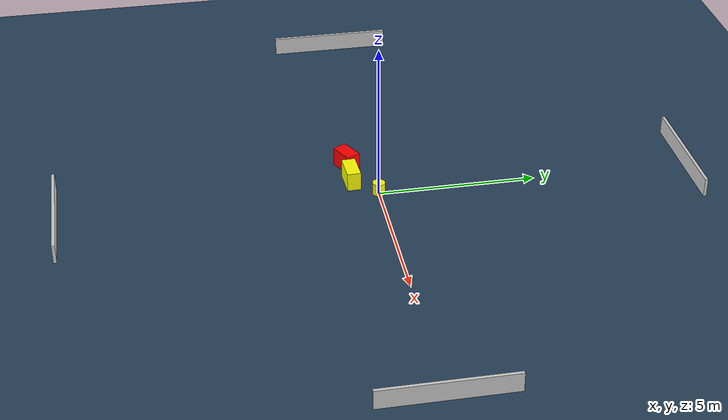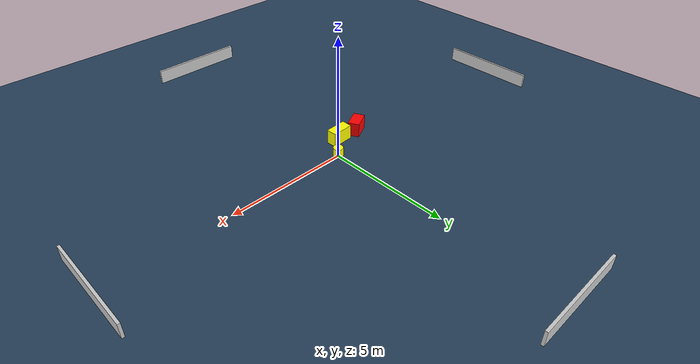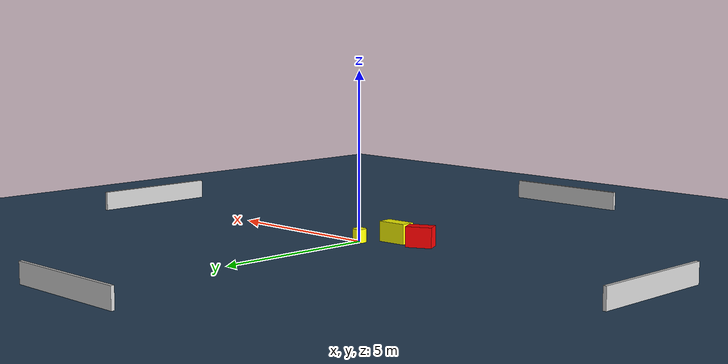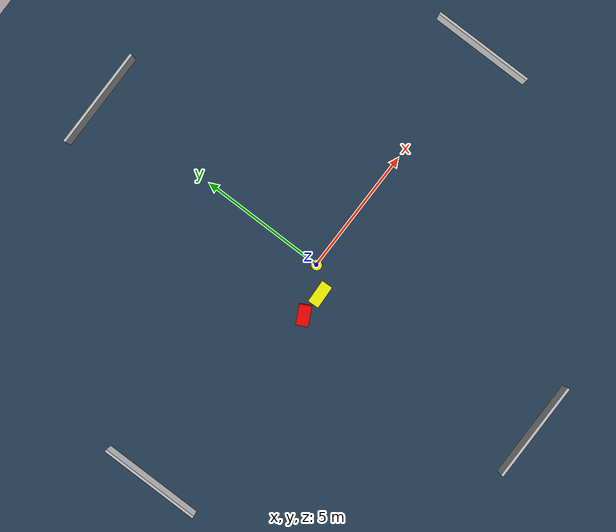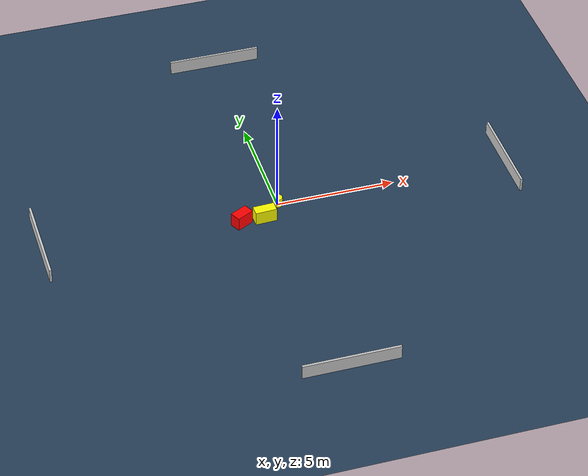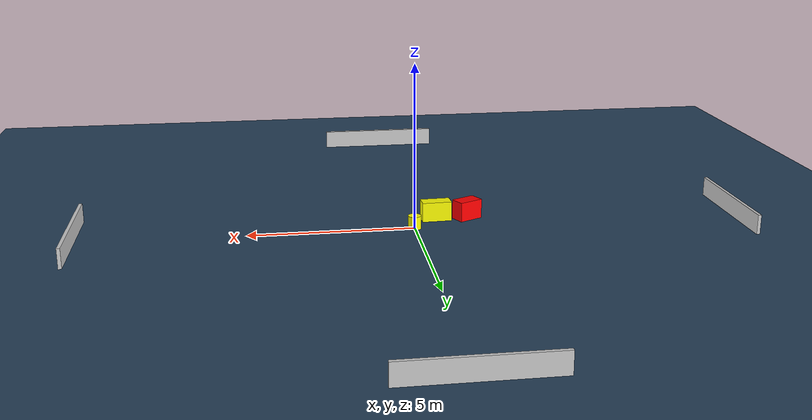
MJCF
<?xml version="1.0" ?>
<mujoco model="generated_environment">
  <option timestep="0.01" integrator="RK4" cone="elliptic"/>
  <default>
    <geom density="1"/>
  </default>
  <asset>
    <texture builtin="gradient" height="3072" name="skybox" rgb1="0.3 0.5 0.7" rgb2="0 0 0" type="skybox" width="512"/>
    <texture builtin="checker" height="300" name="groundplane" rgb1="0.2 0.3 0.4" rgb2="0.1 0.2 0.3" type="2d" width="300"/>
    <material name="groundplane" reflectance="0.2" texrepeat="5 5" texture="groundplane"/>
  </asset>
  <worldbody>
    <light dir="0 0 -1" directional="true" pos="0 0 1.5"/>
    <geom condim="3" friction="0.5 0.005 0.001" material="groundplane" name="floor" pos="0 0 0" size="0 0 0.05" type="plane"/>
    <body name="walls">
      <geom name="wall_1" condim="4" pos="-10.0 0.0 0.3" rgba="0.800000011920929 0.800000011920929 0.800000011920929 1.0" size="0.05 2.0 0.3" type="box"/>
      <geom name="wall_2" condim="4" pos="10.0 0.0 0.3" rgba="0.800000011920929 0.800000011920929 0.800000011920929 1.0" size="0.05 2.0 0.3" type="box"/>
      <geom name="wall_3" condim="4" pos="0.0 -10.0 0.3" rgba="0.800000011920929 0.800000011920929 0.800000011920929 1.0" size="2.0 0.05 0.3" type="box"/>
      <geom name="wall_4" condim="4" pos="0.0 10.0 0.3" rgba="0.800000011920929 0.800000011920929 0.800000011920929 1.0" size="2.0 0.05 0.3" type="box"/>
    </body>
    <body name="robot">
      <joint name="joint_x" type="slide" pos="0 0 0" axis="1 0 0"/>
      <joint name="joint_y" type="slide" pos="0 0 0" axis="0 1 0"/>
      <geom name="robot" type="cylinder" pos="0.0 0.0 0.2" size="0.2 0.2 0.0" mass="5.0" friction="1.0 0.005 0.0001" condim="4" rgba="1.0 1.0 0.0 1.0"/>
    </body>
    <body name="obstacle_1_movable">
      <geom name="obstacle_1_movable" condim="4" pos="-0.7667532701764701 -0.7486882745364246 0.3" euler="0 0 182.47867490652163" friction="0.0 0.005 0.001" rgba="1.0 1.0 0.0 1.0" size="0.4517742990641768 0.21852798295019765 0.3" type="box" mass="0.1"/>
      <joint type="free"/>
    </body>
    <body name="obstacle_2_static">
      <geom name="obstacle_2_static" condim="4" pos="-1.7371113759221848 -0.7378966095491386 0.3" euler="0 0 117.02379338163536" friction="0.0 0.005 0.001" rgba="1.0 0.0 0.0 1.0" size="0.23322457209308642 0.38744771141309897 0.3" type="box"/>
    </body>
  </worldbody>
  <actuator>
    <motor name="actuator_x" joint="joint_x" gear="1" ctrlrange="-1 1"/>
    <motor name="actuator_y" joint="joint_y" gear="1" ctrlrange="-1 1"/>
  </actuator>
</mujoco>
